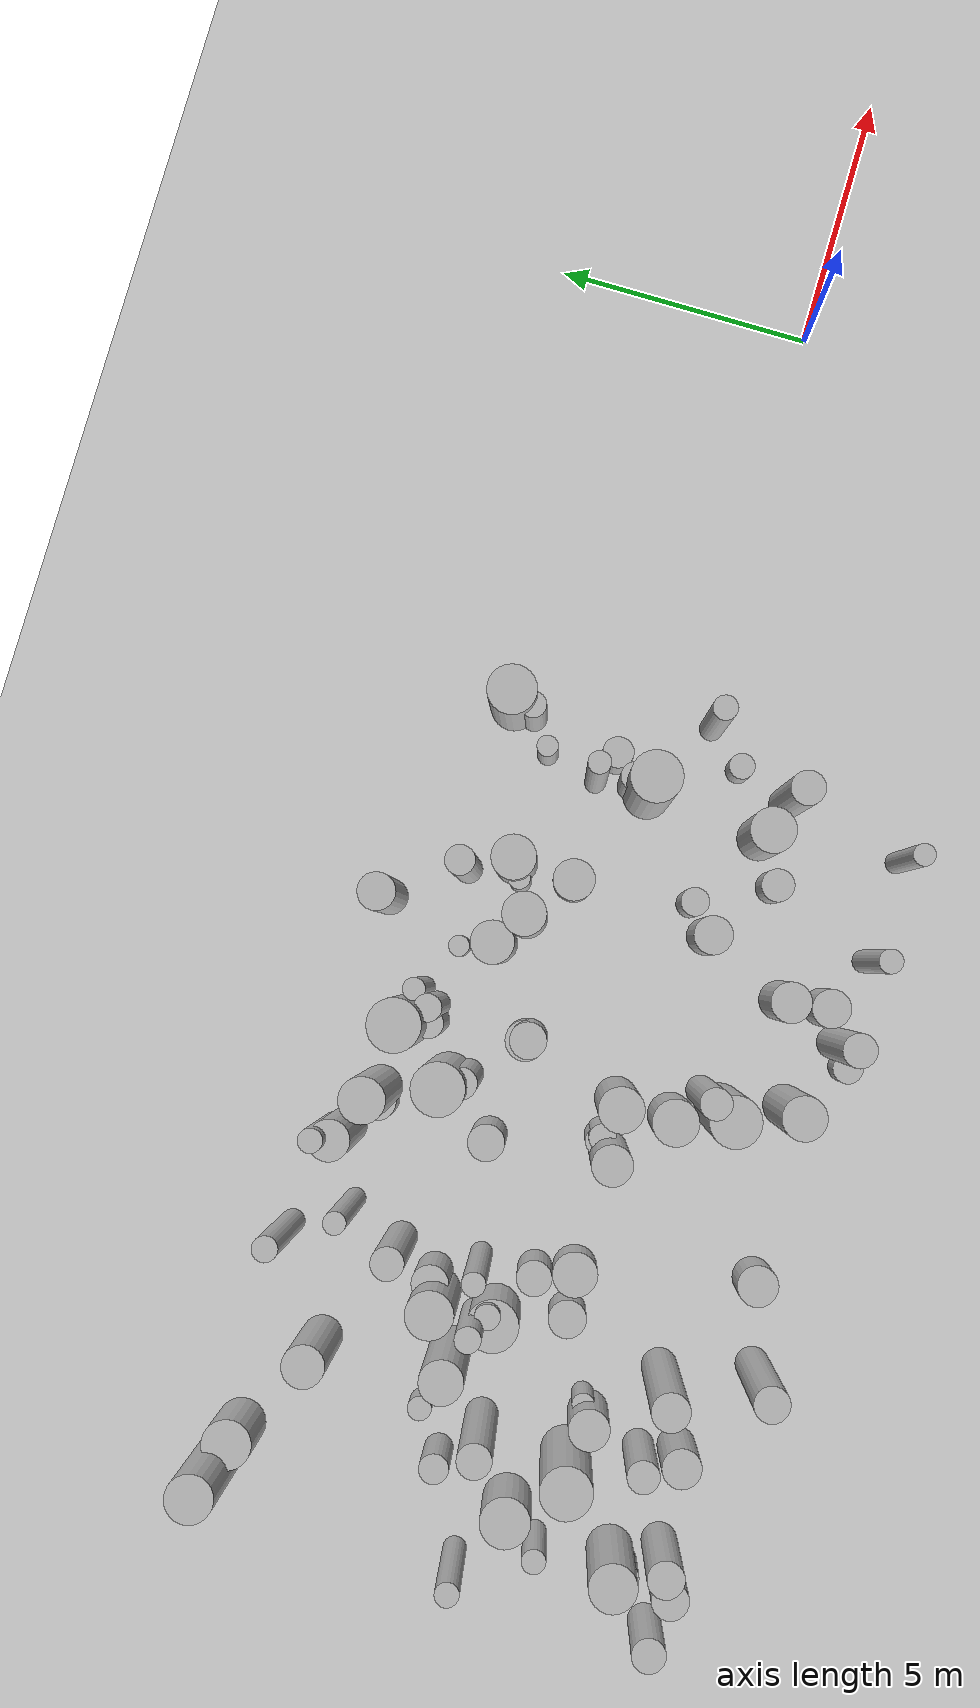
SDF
<sdf version="1.4">
 <world name="default">
  <include><uri>model://ground_plane</uri></include>
  <include><uri>model://sun</uri></include>
  <model name="forest">
   <static>true</static>
   <link name="cylinder3">
    <pose>-13.713914897609564 -4.653162994623614 0.35892277264153055 0 0 0</pose>
    <visual name="visual">
     <geometry>
      <cylinder><radius>0.29627898533306785</radius><length>0.7178455452830611</length></cylinder>
     </geometry>
    </visual>
    <collision name="collision">
     <geometry>
      <cylinder><radius>0.29627898533306785</radius><length>0.7178455452830611</length></cylinder>
     </geometry>
     <max_contacts>0</max_contacts>
    </collision>
   </link>
   <link name="cylinder6">
    <pose>-19.720187394413507 -0.7791817948835389 0.5384522503567314 0 0 0</pose>
    <visual name="visual">
     <geometry>
      <cylinder><radius>0.36325864529305907</radius><length>1.0769045007134628</length></cylinder>
     </geometry>
    </visual>
    <collision name="collision">
     <geometry>
      <cylinder><radius>0.36325864529305907</radius><length>1.0769045007134628</length></cylinder>
     </geometry>
     <max_contacts>0</max_contacts>
    </collision>
   </link>
   <link name="cylinder10">
    <pose>-22.94843817894639 0.8644904563835896 0.7978183880506935 0 0 0</pose>
    <visual name="visual">
     <geometry>
      <cylinder><radius>0.28195261213701345</radius><length>1.595636776101387</length></cylinder>
     </geometry>
    </visual>
    <collision name="collision">
     <geometry>
      <cylinder><radius>0.28195261213701345</radius><length>1.595636776101387</length></cylinder>
     </geometry>
     <max_contacts>0</max_contacts>
    </collision>
   </link>
   <link name="cylinder13">
    <pose>-8.825607430379932 3.061119883167377 1.0908622930355738 0 0 0</pose>
    <visual name="visual">
     <geometry>
      <cylinder><radius>0.25389053908064657</radius><length>2.1817245860711476</length></cylinder>
     </geometry>
    </visual>
    <collision name="collision">
     <geometry>
      <cylinder><radius>0.25389053908064657</radius><length>2.1817245860711476</length></cylinder>
     </geometry>
     <max_contacts>0</max_contacts>
    </collision>
   </link>
   <link name="cylinder16">
    <pose>-14.915830762899091 1.4472085424360976 0.5644783765120763 0 0 0</pose>
    <visual name="visual">
     <geometry>
      <cylinder><radius>0.3948633694514866</radius><length>1.1289567530241527</length></cylinder>
     </geometry>
    </visual>
    <collision name="collision">
     <geometry>
      <cylinder><radius>0.3948633694514866</radius><length>1.1289567530241527</length></cylinder>
     </geometry>
     <max_contacts>0</max_contacts>
    </collision>
   </link>
   <link name="cylinder19">
    <pose>-19.144880378357875 1.1213408445774533 1.868388934945783 0 0 0</pose>
    <visual name="visual">
     <geometry>
      <cylinder><radius>0.21957528042214602</radius><length>3.736777869891566</length></cylinder>
     </geometry>
    </visual>
    <collision name="collision">
     <geometry>
      <cylinder><radius>0.21957528042214602</radius><length>3.736777869891566</length></cylinder>
     </geometry>
     <max_contacts>0</max_contacts>
    </collision>
   </link>
   <link name="cylinder20">
    <pose>-19.71496856231309 -4.511685920978579 1.7659162823239158 0 0 0</pose>
    <visual name="visual">
     <geometry>
      <cylinder><radius>0.33204822793152555</radius><length>3.5318325646478317</length></cylinder>
     </geometry>
    </visual>
    <collision name="collision">
     <geometry>
      <cylinder><radius>0.33204822793152555</radius><length>3.5318325646478317</length></cylinder>
     </geometry>
     <max_contacts>0</max_contacts>
    </collision>
   </link>
   <link name="cylinder28">
    <pose>-13.318579847116085 -4.334735547061642 1.752126669545675 0 0 0</pose>
    <visual name="visual">
     <geometry><cylinder><radius>0.3174813889196501</radius><length>3.50425333909135</length></cylinder></geometry>
    </visual>
    <collision name="collision">
     <geometry><cylinder><radius>0.3174813889196501</radius><length>3.50425333909135</length></cylinder></geometry>
     <max_contacts>0</max_contacts>
    </collision>
   </link>
   <link name="cylinder30">
    <pose>-11.995854792915667 2.4163197238553105 0.9038290726874816 0 0 0</pose>
    <visual name="visual">
     <geometry>
      <cylinder><radius>0.21869572624127953</radius><length>1.8076581453749632</length></cylinder>
     </geometry>
    </visual>
    <collision name="collision">
     <geometry>
      <cylinder><radius>0.21869572624127953</radius><length>1.8076581453749632</length></cylinder>
     </geometry>
     <max_contacts>0</max_contacts>
    </collision>
   </link>
   <link name="cylinder33">
    <pose>-18.896950440802375 -0.6931139422170549 0.49911211689411256 0 0 0</pose>
    <visual name="visual">
     <geometry>
      <cylinder><radius>0.4333925284390563</radius><length>0.9982242337882251</length></cylinder>
     </geometry>
    </visual>
    <collision name="collision">
     <geometry>
      <cylinder><radius>0.4333925284390563</radius><length>0.9982242337882251</length></cylinder>
     </geometry>
     <max_contacts>0</max_contacts>
    </collision>
   </link>
   <link name="cylinder36">
    <pose>-14.860128691754088 1.3980265653850674 1.0639077135778714 0 0 0</pose>
    <visual name="visual">
     <geometry>
      <cylinder><radius>0.3502826349452669</radius><length>2.127815427155743</length></cylinder>
     </geometry>
    </visual>
    <collision name="collision">
     <geometry>
      <cylinder><radius>0.3502826349452669</radius><length>2.127815427155743</length></cylinder>
     </geometry>
     <max_contacts>0</max_contacts>
    </collision>
   </link>
   <link name="cylinder37">
    <pose>-19.28204595331838 2.6946950249595076 1.7064514801910602 0 0 0</pose>
    <visual name="visual">
     <geometry>
      <cylinder><radius>0.30673878537179744</radius><length>3.4129029603821204</length></cylinder>
     </geometry>
    </visual>
    <collision name="collision">
     <geometry>
      <cylinder><radius>0.30673878537179744</radius><length>3.4129029603821204</length></cylinder>
     </geometry>
     <max_contacts>0</max_contacts>
    </collision>
   </link>
   <link name="cylinder38">
    <pose>-21.622168253205782 -3.528277166893835 0.8854798778643833 0 0 0</pose>
    <visual name="visual">
     <geometry>
      <cylinder><radius>0.3737616940321298</radius><length>1.7709597557287666</length></cylinder>
     </geometry>
    </visual>
    <collision name="collision">
     <geometry>
      <cylinder><radius>0.3737616940321298</radius><length>1.7709597557287666</length></cylinder>
     </geometry>
     <max_contacts>0</max_contacts>
    </collision>
   </link>
   <link name="cylinder41">
    <pose>-12.65239928357816 2.0945600030771727 1.8282188372809236 0 0 0</pose>
    <visual name="visual">
     <geometry>
      <cylinder><radius>0.40592139253777537</radius><length>3.656437674561847</length></cylinder>
     </geometry>
    </visual>
    <collision name="collision">
     <geometry>
      <cylinder><radius>0.40592139253777537</radius><length>3.656437674561847</length></cylinder>
     </geometry>
     <max_contacts>0</max_contacts>
    </collision>
   </link>
   <link name="cylinder48">
    <pose>-11.61964310736973 -4.4868902401587905 1.59967877188241 0 0 0</pose>
    <visual name="visual">
     <geometry><cylinder><radius>0.2268719857978892</radius><length>3.19935754376482</length></cylinder></geometry>
    </visual>
    <collision name="collision">
     <geometry><cylinder><radius>0.2268719857978892</radius><length>3.19935754376482</length></cylinder></geometry>
     <max_contacts>0</max_contacts>
    </collision>
   </link>
   <link name="cylinder50">
    <pose>-11.674075723469363 2.605777790942094 1.1533279174148903 0 0 0</pose>
    <visual name="visual">
     <geometry>
      <cylinder><radius>0.429506536923171</radius><length>2.3066558348297805</length></cylinder>
     </geometry>
    </visual>
    <collision name="collision">
     <geometry>
      <cylinder><radius>0.429506536923171</radius><length>2.3066558348297805</length></cylinder>
     </geometry>
     <max_contacts>0</max_contacts>
    </collision>
   </link>
   <link name="cylinder51">
    <pose>-9.448274268920775 2.6031974305453343 0.8548668410377662 0 0 0</pose>
    <visual name="visual">
     <geometry>
      <cylinder><radius>0.2059955484997469</radius><length>1.7097336820755324</length></cylinder>
     </geometry>
    </visual>
    <collision name="collision">
     <geometry>
      <cylinder><radius>0.2059955484997469</radius><length>1.7097336820755324</length></cylinder>
     </geometry>
     <max_contacts>0</max_contacts>
    </collision>
   </link>
   <link name="cylinder53">
    <pose>-21.52801347100941 3.6398916483327692 1.4734466359067553 0 0 0</pose>
    <visual name="visual">
     <geometry>
      <cylinder><radius>0.39693504497746435</radius><length>2.9468932718135106</length></cylinder>
     </geometry>
    </visual>
    <collision name="collision">
     <geometry>
      <cylinder><radius>0.39693504497746435</radius><length>2.9468932718135106</length></cylinder>
     </geometry>
     <max_contacts>0</max_contacts>
    </collision>
   </link>
   <link name="cylinder54">
    <pose>-20.258095380870884 -2.7951237280175145 1.9691184251869394 0 0 0</pose>
    <visual name="visual">
     <geometry>
      <cylinder><radius>0.35025742521704517</radius><length>3.9382368503738787</length></cylinder>
     </geometry>
    </visual>
    <collision name="collision">
     <geometry>
      <cylinder><radius>0.35025742521704517</radius><length>3.9382368503738787</length></cylinder>
     </geometry>
     <max_contacts>0</max_contacts>
    </collision>
   </link>
   <link name="cylinder55">
    <pose>-20.248304255392 0.9410187094456459 1.488160364582664 0 0 0</pose>
    <visual name="visual">
     <geometry>
      <cylinder><radius>0.24636967487454742</radius><length>2.976320729165328</length></cylinder>
     </geometry>
    </visual>
    <collision name="collision">
     <geometry>
      <cylinder><radius>0.24636967487454742</radius><length>2.976320729165328</length></cylinder>
     </geometry>
     <max_contacts>0</max_contacts>
    </collision>
   </link>
   <link name="cylinder59">
    <pose>-12.711289072214715 -3.9343882838865065 0.7482421376359194 0 0 0</pose>
    <visual name="visual">
     <geometry>
      <cylinder><radius>0.37233720048792596</radius><length>1.4964842752718388</length></cylinder>
     </geometry>
    </visual>
    <collision name="collision">
     <geometry>
      <cylinder><radius>0.37233720048792596</radius><length>1.4964842752718388</length></cylinder>
     </geometry>
     <max_contacts>0</max_contacts>
    </collision>
   </link>
   <link name="cylinder60">
    <pose>-16.311451390738718 -0.43196650335526954 0.714466852662723 0 0 0</pose>
    <visual name="visual">
     <geometry>
      <cylinder><radius>0.28649936500409673</radius><length>1.428933705325446</length></cylinder>
     </geometry>
    </visual>
    <collision name="collision">
     <geometry>
      <cylinder><radius>0.28649936500409673</radius><length>1.428933705325446</length></cylinder>
     </geometry>
     <max_contacts>0</max_contacts>
    </collision>
   </link>
   <link name="cylinder61">
    <pose>-19.582668314628947 4.818460122576868 1.8649378753256285 0 0 0</pose>
    <visual name="visual">
     <geometry>
      <cylinder><radius>0.23693553470796497</radius><length>3.729875750651257</length></cylinder>
     </geometry>
    </visual>
    <collision name="collision">
     <geometry>
      <cylinder><radius>0.23693553470796497</radius><length>3.729875750651257</length></cylinder>
     </geometry>
     <max_contacts>0</max_contacts>
    </collision>
   </link>
   <link name="cylinder63">
    <pose>-16.54296434246082 -0.6843838606454264 1.530939241829271 0 0 0</pose>
    <visual name="visual">
     <geometry>
      <cylinder><radius>0.3817170006206134</radius><length>3.061878483658542</length></cylinder>
     </geometry>
    </visual>
    <collision name="collision">
     <geometry>
      <cylinder><radius>0.3817170006206134</radius><length>3.061878483658542</length></cylinder>
     </geometry>
     <max_contacts>0</max_contacts>
    </collision>
   </link>
   <link name="cylinder64">
    <pose>-8.045178185820813 -0.3580063951271928 1.6513341150544132 0 0 0</pose>
    <visual name="visual">
     <geometry>
      <cylinder><radius>0.23491665644662857</radius><length>3.3026682301088264</length></cylinder>
     </geometry>
    </visual>
    <collision name="collision">
     <geometry>
      <cylinder><radius>0.23491665644662857</radius><length>3.3026682301088264</length></cylinder>
     </geometry>
     <max_contacts>0</max_contacts>
    </collision>
   </link>
   <link name="cylinder72">
    <pose>-11.705516170306563 1.414088950837412 0.43539878525196707 0 0 0</pose>
    <visual name="visual">
     <geometry>
      <cylinder><radius>0.4109915763745654</radius><length>0.8707975705039341</length></cylinder>
     </geometry>
    </visual>
    <collision name="collision">
     <geometry>
      <cylinder><radius>0.4109915763745654</radius><length>0.8707975705039341</length></cylinder>
     </geometry>
     <max_contacts>0</max_contacts>
    </collision>
   </link>
   <link name="cylinder73">
    <pose>-21.031636141422965 1.1885612521935665 1.6455285271103715 0 0 0</pose>
    <visual name="visual">
     <geometry>
      <cylinder><radius>0.4101022583487687</radius><length>3.291057054220743</length></cylinder>
     </geometry>
    </visual>
    <collision name="collision">
     <geometry>
      <cylinder><radius>0.4101022583487687</radius><length>3.291057054220743</length></cylinder>
     </geometry>
     <max_contacts>0</max_contacts>
    </collision>
   </link>
   <link name="cylinder76">
    <pose>-10.731984836244191 -2.3555092584488024 0.6043939121690365 0 0 0</pose>
    <visual name="visual">
     <geometry><cylinder><radius>0.320633611367265</radius><length>1.208787824338073</length></cylinder></geometry>
    </visual>
    <collision name="collision">
     <geometry><cylinder><radius>0.320633611367265</radius><length>1.208787824338073</length></cylinder></geometry>
     <max_contacts>0</max_contacts>
    </collision>
   </link>
   <link name="cylinder80">
    <pose>-23.547237608411248 4.661717898071235 0.9072992125374453 0 0 0</pose>
    <visual name="visual">
     <geometry>
      <cylinder><radius>0.4698943906556807</radius><length>1.8145984250748906</length></cylinder>
     </geometry>
    </visual>
    <collision name="collision">
     <geometry>
      <cylinder><radius>0.4698943906556807</radius><length>1.8145984250748906</length></cylinder>
     </geometry>
     <max_contacts>0</max_contacts>
    </collision>
   </link>
   <link name="cylinder82">
    <pose>-8.699680272153731 -1.0871776547090803 0.4847785946909561 0 0 0</pose>
    <visual name="visual">
     <geometry>
      <cylinder><radius>0.2513691433899134</radius><length>0.9695571893819122</length></cylinder>
     </geometry>
    </visual>
    <collision name="collision">
     <geometry>
      <cylinder><radius>0.2513691433899134</radius><length>0.9695571893819122</length></cylinder>
     </geometry>
     <max_contacts>0</max_contacts>
    </collision>
   </link>
   <link name="cylinder89">
    <pose>-9.664251049753126 0.5089138179898356 1.9934408992164934 0 0 0</pose>
    <visual name="visual">
     <geometry>
      <cylinder><radius>0.47892854912935545</radius><length>3.9868817984329867</length></cylinder>
     </geometry>
    </visual>
    <collision name="collision">
     <geometry>
      <cylinder><radius>0.47892854912935545</radius><length>3.9868817984329867</length></cylinder>
     </geometry>
     <max_contacts>0</max_contacts>
    </collision>
   </link>
   <link name="cylinder90">
    <pose>-22.307128640391845 -1.498227058876397 1.547562607182266 0 0 0</pose>
    <visual name="visual">
     <geometry>
      <cylinder><radius>0.4866022356289181</radius><length>3.095125214364532</length></cylinder>
     </geometry>
    </visual>
    <collision name="collision">
     <geometry>
      <cylinder><radius>0.4866022356289181</radius><length>3.095125214364532</length></cylinder>
     </geometry>
     <max_contacts>0</max_contacts>
    </collision>
   </link>
   <link name="cylinder94">
    <pose>-19.93070459955057 0.6989024922443621 1.0199618389779534 0 0 0</pose>
    <visual name="visual">
     <geometry>
      <cylinder><radius>0.24335262019357187</radius><length>2.039923677955907</length></cylinder>
     </geometry>
    </visual>
    <collision name="collision">
     <geometry>
      <cylinder><radius>0.24335262019357187</radius><length>2.039923677955907</length></cylinder>
     </geometry>
     <max_contacts>0</max_contacts>
    </collision>
   </link>
   <link name="cylinder95">
    <pose>-15.537048727417153 -0.5628699038007863 1.5763746500477476 0 0 0</pose>
    <visual name="visual">
     <geometry><cylinder><radius>0.425338742533531</radius><length>3.152749300095495</length></cylinder></geometry>
    </visual>
    <collision name="collision">
     <geometry><cylinder><radius>0.425338742533531</radius><length>3.152749300095495</length></cylinder></geometry>
     <max_contacts>0</max_contacts>
    </collision>
   </link>
   <link name="cylinder101">
    <pose>-15.204031428692966 3.768416047026829 1.7995495246444722 0 0 0</pose>
    <visual name="visual">
     <geometry>
      <cylinder><radius>0.497481941004323</radius><length>3.5990990492889443</length></cylinder>
     </geometry>
    </visual>
    <collision name="collision">
     <geometry>
      <cylinder><radius>0.497481941004323</radius><length>3.5990990492889443</length></cylinder>
     </geometry>
     <max_contacts>0</max_contacts>
    </collision>
   </link>
   <link name="cylinder109">
    <pose>-16.217596100967967 -0.44247608949450523 0.8615755332349713 0 0 0</pose>
    <visual name="visual">
     <geometry>
      <cylinder><radius>0.26234511421405327</radius><length>1.7231510664699425</length></cylinder>
     </geometry>
    </visual>
    <collision name="collision">
     <geometry>
      <cylinder><radius>0.26234511421405327</radius><length>1.7231510664699425</length></cylinder>
     </geometry>
     <max_contacts>0</max_contacts>
    </collision>
   </link>
   <link name="cylinder112">
    <pose>-23.43448711848476 -3.7036496082767867 1.230458189649069 0 0 0</pose>
    <visual name="visual">
     <geometry>
      <cylinder><radius>0.3479156946797025</radius><length>2.460916379298138</length></cylinder>
     </geometry>
    </visual>
    <collision name="collision">
     <geometry>
      <cylinder><radius>0.3479156946797025</radius><length>2.460916379298138</length></cylinder>
     </geometry>
     <max_contacts>0</max_contacts>
    </collision>
   </link>
   <link name="cylinder115">
    <pose>-13.297319464965762 2.5191761511442046 1.503509850485518 0 0 0</pose>
    <visual name="visual">
     <geometry>
      <cylinder><radius>0.40467422501779327</radius><length>3.007019700971036</length></cylinder>
     </geometry>
    </visual>
    <collision name="collision">
     <geometry>
      <cylinder><radius>0.40467422501779327</radius><length>3.007019700971036</length></cylinder>
     </geometry>
     <max_contacts>0</max_contacts>
    </collision>
   </link>
   <link name="cylinder116">
    <pose>-13.544723851435265 3.1862904845567446 0.4117936563209377 0 0 0</pose>
    <visual name="visual">
     <geometry>
      <cylinder><radius>0.20365809842283808</radius><length>0.8235873126418753</length></cylinder>
     </geometry>
    </visual>
    <collision name="collision">
     <geometry>
      <cylinder><radius>0.20365809842283808</radius><length>0.8235873126418753</length></cylinder>
     </geometry>
     <max_contacts>0</max_contacts>
    </collision>
   </link>
   <link name="cylinder117">
    <pose>-14.759970854919585 -3.748810886451449 1.6313199008229375 0 0 0</pose>
    <visual name="visual">
     <geometry>
      <cylinder><radius>0.41455009812777377</radius><length>3.262639801645875</length></cylinder>
     </geometry>
    </visual>
    <collision name="collision">
     <geometry>
      <cylinder><radius>0.41455009812777377</radius><length>3.262639801645875</length></cylinder>
     </geometry>
     <max_contacts>0</max_contacts>
    </collision>
   </link>
   <link name="cylinder120">
    <pose>-22.167185689000945 1.433938770246403 0.3713698388362926 0 0 0</pose>
    <visual name="visual">
     <geometry>
      <cylinder><radius>0.23065739467556007</radius><length>0.7427396776725852</length></cylinder>
     </geometry>
    </visual>
    <collision name="collision">
     <geometry>
      <cylinder><radius>0.23065739467556007</radius><length>0.7427396776725852</length></cylinder>
     </geometry>
     <max_contacts>0</max_contacts>
    </collision>
   </link>
   <link name="cylinder121">
    <pose>-9.580232952961326 -4.575292315917671 1.5172976010704973 0 0 0</pose>
    <visual name="visual">
     <geometry>
      <cylinder><radius>0.20955508155520736</radius><length>3.0345952021409945</length></cylinder>
     </geometry>
    </visual>
    <collision name="collision">
     <geometry>
      <cylinder><radius>0.20955508155520736</radius><length>3.0345952021409945</length></cylinder>
     </geometry>
     <max_contacts>0</max_contacts>
    </collision>
   </link>
   <link name="cylinder123">
    <pose>-12.819619486948897 -3.0883684195279217 1.0987792743196445 0 0 0</pose>
    <visual name="visual">
     <geometry>
      <cylinder><radius>0.3870804709129065</radius><length>2.197558548639289</length></cylinder>
     </geometry>
    </visual>
    <collision name="collision">
     <geometry>
      <cylinder><radius>0.3870804709129065</radius><length>2.197558548639289</length></cylinder>
     </geometry>
     <max_contacts>0</max_contacts>
    </collision>
   </link>
   <link name="cylinder124">
    <pose>-9.597170419666707 0.8541410063010826 1.1536275108537848 0 0 0</pose>
    <visual name="visual">
     <geometry>
      <cylinder><radius>0.2727632501849764</radius><length>2.3072550217075696</length></cylinder>
     </geometry>
    </visual>
    <collision name="collision">
     <geometry>
      <cylinder><radius>0.2727632501849764</radius><length>2.3072550217075696</length></cylinder>
     </geometry>
     <max_contacts>0</max_contacts>
    </collision>
   </link>
   <link name="cylinder125">
    <pose>-15.890134098079168 2.3387991329294575 1.5600416155643388 0 0 0</pose>
    <visual name="visual">
     <geometry>
      <cylinder><radius>0.2946198567750899</radius><length>3.1200832311286777</length></cylinder>
     </geometry>
    </visual>
    <collision name="collision">
     <geometry>
      <cylinder><radius>0.2946198567750899</radius><length>3.1200832311286777</length></cylinder>
     </geometry>
     <max_contacts>0</max_contacts>
    </collision>
   </link>
   <link name="cylinder127">
    <pose>-22.094568502873578 0.24849919539190157 1.8104484568268493 0 0 0</pose>
    <visual name="visual">
     <geometry>
      <cylinder><radius>0.32058350544033587</radius><length>3.6208969136536986</length></cylinder>
     </geometry>
    </visual>
    <collision name="collision">
     <geometry>
      <cylinder><radius>0.32058350544033587</radius><length>3.6208969136536986</length></cylinder>
     </geometry>
     <max_contacts>0</max_contacts>
    </collision>
   </link>
   <link name="cylinder128">
    <pose>-24.07490546864956 -4.029907173278506 0.7149283988517983 0 0 0</pose>
    <visual name="visual">
     <geometry>
      <cylinder><radius>0.35626735580654867</radius><length>1.4298567977035965</length></cylinder>
     </geometry>
    </visual>
    <collision name="collision">
     <geometry>
      <cylinder><radius>0.35626735580654867</radius><length>1.4298567977035965</length></cylinder>
     </geometry>
     <max_contacts>0</max_contacts>
    </collision>
   </link>
   <link name="cylinder131">
    <pose>-24.208820383109042 4.883896505833004 1.6591546350370874 0 0 0</pose>
    <visual name="visual">
     <geometry>
      <cylinder><radius>0.4460807164171682</radius><length>3.3183092700741748</length></cylinder>
     </geometry>
    </visual>
    <collision name="collision">
     <geometry>
      <cylinder><radius>0.4460807164171682</radius><length>3.3183092700741748</length></cylinder>
     </geometry>
     <max_contacts>0</max_contacts>
    </collision>
   </link>
   <link name="cylinder133">
    <pose>-16.061540326355043 2.6912595599940206 1.8584403676056387 0 0 0</pose>
    <visual name="visual">
     <geometry>
      <cylinder><radius>0.4928419440184799</radius><length>3.7168807352112774</length></cylinder>
     </geometry>
    </visual>
    <collision name="collision">
     <geometry>
      <cylinder><radius>0.4928419440184799</radius><length>3.7168807352112774</length></cylinder>
     </geometry>
     <max_contacts>0</max_contacts>
    </collision>
   </link>
   <link name="cylinder135">
    <pose>-20.071337627431205 1.7288399857383734 1.3616226591101754 0 0 0</pose>
    <visual name="visual">
     <geometry>
      <cylinder><radius>0.4518478139563043</radius><length>2.723245318220351</length></cylinder>
     </geometry>
    </visual>
    <collision name="collision">
     <geometry>
      <cylinder><radius>0.4518478139563043</radius><length>2.723245318220351</length></cylinder>
     </geometry>
     <max_contacts>0</max_contacts>
    </collision>
   </link>
   <link name="cylinder137">
    <pose>-24.678897566556323 0.03317179946340865 1.3980201165567743 0 0 0</pose>
    <visual name="visual">
     <geometry>
      <cylinder><radius>0.22850821174696162</radius><length>2.7960402331135485</length></cylinder>
     </geometry>
    </visual>
    <collision name="collision">
     <geometry>
      <cylinder><radius>0.22850821174696162</radius><length>2.7960402331135485</length></cylinder>
     </geometry>
     <max_contacts>0</max_contacts>
    </collision>
   </link>
   <link name="cylinder138">
    <pose>-23.84641099533799 -2.8292889356464435 1.229386482562072 0 0 0</pose>
    <visual name="visual">
     <geometry>
      <cylinder><radius>0.45400217665150744</radius><length>2.458772965124144</length></cylinder>
     </geometry>
    </visual>
    <collision name="collision">
     <geometry>
      <cylinder><radius>0.45400217665150744</radius><length>2.458772965124144</length></cylinder>
     </geometry>
     <max_contacts>0</max_contacts>
    </collision>
   </link>
   <link name="cylinder142">
    <pose>-23.95264176089716 -1.360596673792973 0.9503407771780907 0 0 0</pose>
    <visual name="visual">
     <geometry>
      <cylinder><radius>0.2290065166219853</radius><length>1.9006815543561815</length></cylinder>
     </geometry>
    </visual>
    <collision name="collision">
     <geometry>
      <cylinder><radius>0.2290065166219853</radius><length>1.9006815543561815</length></cylinder>
     </geometry>
     <max_contacts>0</max_contacts>
    </collision>
   </link>
   <link name="cylinder144">
    <pose>-9.067090468270433 -2.161250965332232 1.8143996172041699 0 0 0</pose>
    <visual name="visual">
     <geometry>
      <cylinder><radius>0.32133539746938955</radius><length>3.6287992344083397</length></cylinder>
     </geometry>
    </visual>
    <collision name="collision">
     <geometry>
      <cylinder><radius>0.32133539746938955</radius><length>3.6287992344083397</length></cylinder>
     </geometry>
     <max_contacts>0</max_contacts>
    </collision>
   </link>
   <link name="cylinder147">
    <pose>-15.148880675204962 -2.5474341422347644 1.784763427263528 0 0 0</pose>
    <visual name="visual">
     <geometry>
      <cylinder><radius>0.4775555957432288</radius><length>3.569526854527056</length></cylinder>
     </geometry>
    </visual>
    <collision name="collision">
     <geometry>
      <cylinder><radius>0.4775555957432288</radius><length>3.569526854527056</length></cylinder>
     </geometry>
     <max_contacts>0</max_contacts>
    </collision>
   </link>
   <link name="cylinder149">
    <pose>-23.48791554137427 -0.6722630188787724 0.857841863803825 0 0 0</pose>
    <visual name="visual">
     <geometry><cylinder><radius>0.4777144338213825</radius><length>1.71568372760765</length></cylinder></geometry>
    </visual>
    <collision name="collision">
     <geometry><cylinder><radius>0.4777144338213825</radius><length>1.71568372760765</length></cylinder></geometry>
     <max_contacts>0</max_contacts>
    </collision>
   </link>
   <link name="cylinder151">
    <pose>-14.93119392321216 -2.1097782726272776 1.8682020625469682 0 0 0</pose>
    <visual name="visual">
     <geometry>
      <cylinder><radius>0.295432280428646</radius><length>3.7364041250939364</length></cylinder>
     </geometry>
    </visual>
    <collision name="collision">
     <geometry>
      <cylinder><radius>0.295432280428646</radius><length>3.7364041250939364</length></cylinder>
     </geometry>
     <max_contacts>0</max_contacts>
    </collision>
   </link>
   <link name="cylinder153">
    <pose>-21.812266513124168 -2.8147088162589053 1.2084464709443778 0 0 0</pose>
    <visual name="visual">
     <geometry>
      <cylinder><radius>0.30542309342612384</radius><length>2.4168929418887557</length></cylinder>
     </geometry>
    </visual>
    <collision name="collision">
     <geometry>
      <cylinder><radius>0.30542309342612384</radius><length>2.4168929418887557</length></cylinder>
     </geometry>
     <max_contacts>0</max_contacts>
    </collision>
   </link>
   <link name="cylinder155">
    <pose>-18.119169545430353 -4.062386996366168 0.558731623928491 0 0 0</pose>
    <visual name="visual">
     <geometry>
      <cylinder><radius>0.39460949242159105</radius><length>1.117463247856982</length></cylinder>
     </geometry>
    </visual>
    <collision name="collision">
     <geometry>
      <cylinder><radius>0.39460949242159105</radius><length>1.117463247856982</length></cylinder>
     </geometry>
     <max_contacts>0</max_contacts>
    </collision>
   </link>
   <link name="cylinder164">
    <pose>-21.445618115406813 -1.6971747300289266 0.8479275842433371 0 0 0</pose>
    <visual name="visual">
     <geometry>
      <cylinder><radius>0.3919926036477084</radius><length>1.6958551684866743</length></cylinder>
     </geometry>
    </visual>
    <collision name="collision">
     <geometry>
      <cylinder><radius>0.3919926036477084</radius><length>1.6958551684866743</length></cylinder>
     </geometry>
     <max_contacts>0</max_contacts>
    </collision>
   </link>
   <link name="cylinder167">
    <pose>-15.561372180625083 -1.6644836455299963 0.9645845381636968 0 0 0</pose>
    <visual name="visual">
     <geometry>
      <cylinder><radius>0.44533153014863935</radius><length>1.9291690763273937</length></cylinder>
     </geometry>
    </visual>
    <collision name="collision">
     <geometry>
      <cylinder><radius>0.44533153014863935</radius><length>1.9291690763273937</length></cylinder>
     </geometry>
     <max_contacts>0</max_contacts>
    </collision>
   </link>
   <link name="cylinder168">
    <pose>-21.15799701030287 -1.508290868894063 0.5300095795455719 0 0 0</pose>
    <visual name="visual">
     <geometry>
      <cylinder><radius>0.2150021644859002</radius><length>1.0600191590911439</length></cylinder>
     </geometry>
    </visual>
    <collision name="collision">
     <geometry>
      <cylinder><radius>0.2150021644859002</radius><length>1.0600191590911439</length></cylinder>
     </geometry>
     <max_contacts>0</max_contacts>
    </collision>
   </link>
   <link name="cylinder171">
    <pose>-17.51053662225 4.3207035170675585 1.6383711711813427 0 0 0</pose>
    <visual name="visual">
     <geometry>
      <cylinder><radius>0.3828858113604293</radius><length>3.2767423423626854</length></cylinder>
     </geometry>
    </visual>
    <collision name="collision">
     <geometry>
      <cylinder><radius>0.3828858113604293</radius><length>3.2767423423626854</length></cylinder>
     </geometry>
     <max_contacts>0</max_contacts>
    </collision>
   </link>
   <link name="cylinder173">
    <pose>-16.89742178824533 1.6182190985710125 0.9555313753113482 0 0 0</pose>
    <visual name="visual">
     <geometry>
      <cylinder><radius>0.3487976577033818</radius><length>1.9110627506226965</length></cylinder>
     </geometry>
    </visual>
    <collision name="collision">
     <geometry>
      <cylinder><radius>0.3487976577033818</radius><length>1.9110627506226965</length></cylinder>
     </geometry>
     <max_contacts>0</max_contacts>
    </collision>
   </link>
   <link name="cylinder174">
    <pose>-19.115563546423523 0.0468055963132219 0.6973775284210413 0 0 0</pose>
    <visual name="visual">
     <geometry>
      <cylinder><radius>0.33823743453322286</radius><length>1.3947550568420826</length></cylinder>
     </geometry>
    </visual>
    <collision name="collision">
     <geometry>
      <cylinder><radius>0.33823743453322286</radius><length>1.3947550568420826</length></cylinder>
     </geometry>
     <max_contacts>0</max_contacts>
    </collision>
   </link>
   <link name="cylinder176">
    <pose>-16.606035913415774 3.913421193495383 1.9494413634926016 0 0 0</pose>
    <visual name="visual">
     <geometry>
      <cylinder><radius>0.42370785502468344</radius><length>3.898882726985203</length></cylinder>
     </geometry>
    </visual>
    <collision name="collision">
     <geometry>
      <cylinder><radius>0.42370785502468344</radius><length>3.898882726985203</length></cylinder>
     </geometry>
     <max_contacts>0</max_contacts>
    </collision>
   </link>
   <link name="cylinder177">
    <pose>-17.556301956291815 4.599019296697422 1.844129696933924 0 0 0</pose>
    <visual name="visual">
     <geometry>
      <cylinder><radius>0.22622757829108056</radius><length>3.688259393867848</length></cylinder>
     </geometry>
    </visual>
    <collision name="collision">
     <geometry>
      <cylinder><radius>0.22622757829108056</radius><length>3.688259393867848</length></cylinder>
     </geometry>
     <max_contacts>0</max_contacts>
    </collision>
   </link>
   <link name="cylinder181">
    <pose>-12.02235392216464 -1.3661689705713198 1.0441359732700408 0 0 0</pose>
    <visual name="visual">
     <geometry>
      <cylinder><radius>0.368882218497943</radius><length>2.0882719465400816</length></cylinder>
     </geometry>
    </visual>
    <collision name="collision">
     <geometry>
      <cylinder><radius>0.368882218497943</radius><length>2.0882719465400816</length></cylinder>
     </geometry>
     <max_contacts>0</max_contacts>
    </collision>
   </link>
   <link name="cylinder185">
    <pose>-9.143887643406678 1.2810184522451076 0.6433098434785101 0 0 0</pose>
    <visual name="visual">
     <geometry>
      <cylinder><radius>0.303944077255199</radius><length>1.2866196869570201</length></cylinder>
     </geometry>
    </visual>
    <collision name="collision">
     <geometry>
      <cylinder><radius>0.303944077255199</radius><length>1.2866196869570201</length></cylinder>
     </geometry>
     <max_contacts>0</max_contacts>
    </collision>
   </link>
   <link name="cylinder188">
    <pose>-16.838309278141907 3.8448332576855506 0.4211220095972045 0 0 0</pose>
    <visual name="visual">
     <geometry>
      <cylinder><radius>0.3632699095170877</radius><length>0.842244019194409</length></cylinder>
     </geometry>
    </visual>
    <collision name="collision">
     <geometry>
      <cylinder><radius>0.3632699095170877</radius><length>0.842244019194409</length></cylinder>
     </geometry>
     <max_contacts>0</max_contacts>
    </collision>
   </link>
   <link name="cylinder189">
    <pose>-24.95740358506279 -3.8420129941176437 0.983934560643017 0 0 0</pose>
    <visual name="visual">
     <geometry>
      <cylinder><radius>0.3227461647906049</radius><length>1.967869121286034</length></cylinder>
     </geometry>
    </visual>
    <collision name="collision">
     <geometry>
      <cylinder><radius>0.3227461647906049</radius><length>1.967869121286034</length></cylinder>
     </geometry>
     <max_contacts>0</max_contacts>
    </collision>
   </link>
   <link name="cylinder197">
    <pose>-12.050445021476175 3.468333778144345 1.7898335667311098 0 0 0</pose>
    <visual name="visual">
     <geometry>
      <cylinder><radius>0.2800565629155256</radius><length>3.5796671334622197</length></cylinder>
     </geometry>
    </visual>
    <collision name="collision">
     <geometry>
      <cylinder><radius>0.2800565629155256</radius><length>3.5796671334622197</length></cylinder>
     </geometry>
     <max_contacts>0</max_contacts>
    </collision>
   </link>
   <link name="cylinder198">
    <pose>-14.507454776609691 3.6467596460602785 1.483068009266078 0 0 0</pose>
    <visual name="visual">
     <geometry>
      <cylinder><radius>0.2102984870141463</radius><length>2.966136018532156</length></cylinder>
     </geometry>
    </visual>
    <collision name="collision">
     <geometry>
      <cylinder><radius>0.2102984870141463</radius><length>2.966136018532156</length></cylinder>
     </geometry>
     <max_contacts>0</max_contacts>
    </collision>
   </link>
   <link name="cylinder212">
    <pose>-9.706542363168296 1.5541676008885563 1.973016427019224 0 0 0</pose>
    <visual name="visual">
     <geometry>
      <cylinder><radius>0.21318094145621314</radius><length>3.946032854038448</length></cylinder>
     </geometry>
    </visual>
    <collision name="collision">
     <geometry>
      <cylinder><radius>0.21318094145621314</radius><length>3.946032854038448</length></cylinder>
     </geometry>
     <max_contacts>0</max_contacts>
    </collision>
   </link>
   <link name="cylinder213">
    <pose>-24.040242078320862 -3.051726883520783 0.5392928540557562 0 0 0</pose>
    <visual name="visual">
     <geometry>
      <cylinder><radius>0.3661010602401349</radius><length>1.0785857081115124</length></cylinder>
     </geometry>
    </visual>
    <collision name="collision">
     <geometry>
      <cylinder><radius>0.3661010602401349</radius><length>1.0785857081115124</length></cylinder>
     </geometry>
     <max_contacts>0</max_contacts>
    </collision>
   </link>
   <link name="cylinder218">
    <pose>-18.8250936486315 3.7779543419807275 1.8200102800739284 0 0 0</pose>
    <visual name="visual">
     <geometry>
      <cylinder><radius>0.2101451037526393</radius><length>3.640020560147857</length></cylinder>
     </geometry>
    </visual>
    <collision name="collision">
     <geometry>
      <cylinder><radius>0.2101451037526393</radius><length>3.640020560147857</length></cylinder>
     </geometry>
     <max_contacts>0</max_contacts>
    </collision>
   </link>
   <link name="cylinder221">
    <pose>-8.710752255264588 3.499471175164663 1.2872250110786505 0 0 0</pose>
    <visual name="visual">
     <geometry>
      <cylinder><radius>0.47557478284353555</radius><length>2.574450022157301</length></cylinder>
     </geometry>
    </visual>
    <collision name="collision">
     <geometry>
      <cylinder><radius>0.47557478284353555</radius><length>2.574450022157301</length></cylinder>
     </geometry>
     <max_contacts>0</max_contacts>
    </collision>
   </link>
   <link name="cylinder227">
    <pose>-19.70378345003576 1.8946752412637728 0.8443464145254186 0 0 0</pose>
    <visual name="visual">
     <geometry>
      <cylinder><radius>0.35146268830501537</radius><length>1.6886928290508372</length></cylinder>
     </geometry>
    </visual>
    <collision name="collision">
     <geometry>
      <cylinder><radius>0.35146268830501537</radius><length>1.6886928290508372</length></cylinder>
     </geometry>
     <max_contacts>0</max_contacts>
    </collision>
   </link>
   <link name="cylinder228">
    <pose>-9.878832128107117 -1.8517991857954197 1.3485154568532345 0 0 0</pose>
    <visual name="visual">
     <geometry>
      <cylinder><radius>0.4335224663186167</radius><length>2.697030913706469</length></cylinder>
     </geometry>
    </visual>
    <collision name="collision">
     <geometry>
      <cylinder><radius>0.4335224663186167</radius><length>2.697030913706469</length></cylinder>
     </geometry>
     <max_contacts>0</max_contacts>
    </collision>
   </link>
   <link name="cylinder232">
    <pose>-15.072781777058776 3.2569843641504512 1.0809113291816597 0 0 0</pose>
    <visual name="visual">
     <geometry>
      <cylinder><radius>0.2804745685686879</radius><length>2.1618226583633193</length></cylinder>
     </geometry>
    </visual>
    <collision name="collision">
     <geometry>
      <cylinder><radius>0.2804745685686879</radius><length>2.1618226583633193</length></cylinder>
     </geometry>
     <max_contacts>0</max_contacts>
    </collision>
   </link>
   <link name="cylinder233">
    <pose>-14.762613367238064 3.3099637173704384 1.4892371208057202 0 0 0</pose>
    <visual name="visual">
     <geometry>
      <cylinder><radius>0.2600195617355683</radius><length>2.9784742416114405</length></cylinder>
     </geometry>
    </visual>
    <collision name="collision">
     <geometry>
      <cylinder><radius>0.2600195617355683</radius><length>2.9784742416114405</length></cylinder>
     </geometry>
     <max_contacts>0</max_contacts>
    </collision>
   </link>
   <link name="cylinder237">
    <pose>-11.494219261005483 -0.8990214389719338 0.7879010586707077 0 0 0</pose>
    <visual name="visual">
     <geometry>
      <cylinder><radius>0.2736309311780497</radius><length>1.5758021173414154</length></cylinder>
     </geometry>
    </visual>
    <collision name="collision">
     <geometry>
      <cylinder><radius>0.2736309311780497</radius><length>1.5758021173414154</length></cylinder>
     </geometry>
     <max_contacts>0</max_contacts>
    </collision>
   </link>
   <link name="cylinder238">
    <pose>-20.101937242078186 0.5566187079468454 0.9130744211086514 0 0 0</pose>
    <visual name="visual">
     <geometry>
      <cylinder><radius>0.49463148802967466</radius><length>1.826148842217303</length></cylinder>
     </geometry>
    </visual>
    <collision name="collision">
     <geometry>
      <cylinder><radius>0.49463148802967466</radius><length>1.826148842217303</length></cylinder>
     </geometry>
     <max_contacts>0</max_contacts>
    </collision>
   </link>
   <link name="cylinder240">
    <pose>-12.999961366762092 4.798817151256916 1.5192158994058311 0 0 0</pose>
    <visual name="visual">
     <geometry>
      <cylinder><radius>0.35710027007877787</radius><length>3.0384317988116623</length></cylinder>
     </geometry>
    </visual>
    <collision name="collision">
     <geometry>
      <cylinder><radius>0.35710027007877787</radius><length>3.0384317988116623</length></cylinder>
     </geometry>
     <max_contacts>0</max_contacts>
    </collision>
   </link>
  </model>
 </world>
</sdf>
